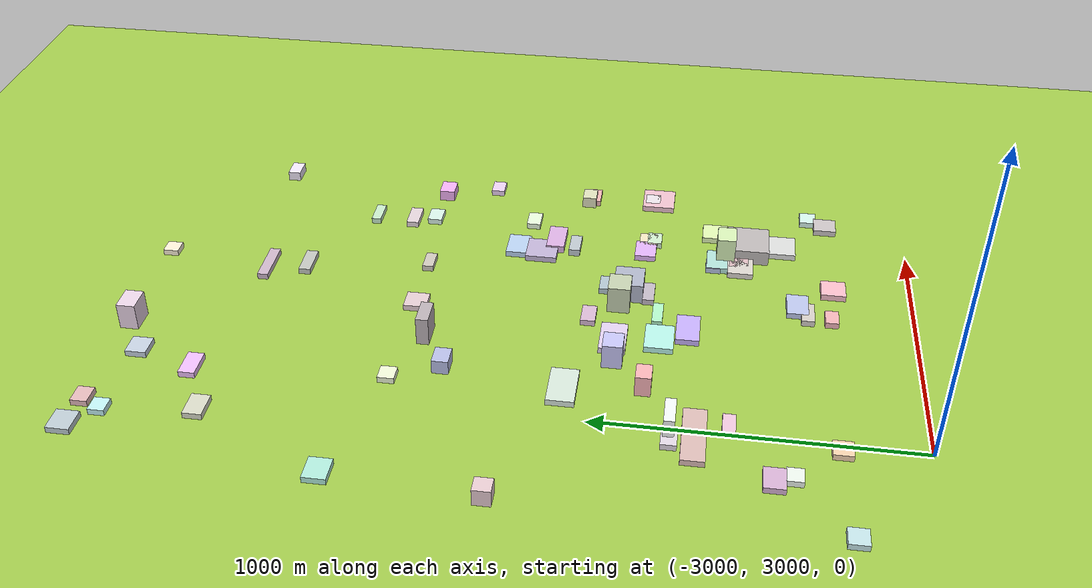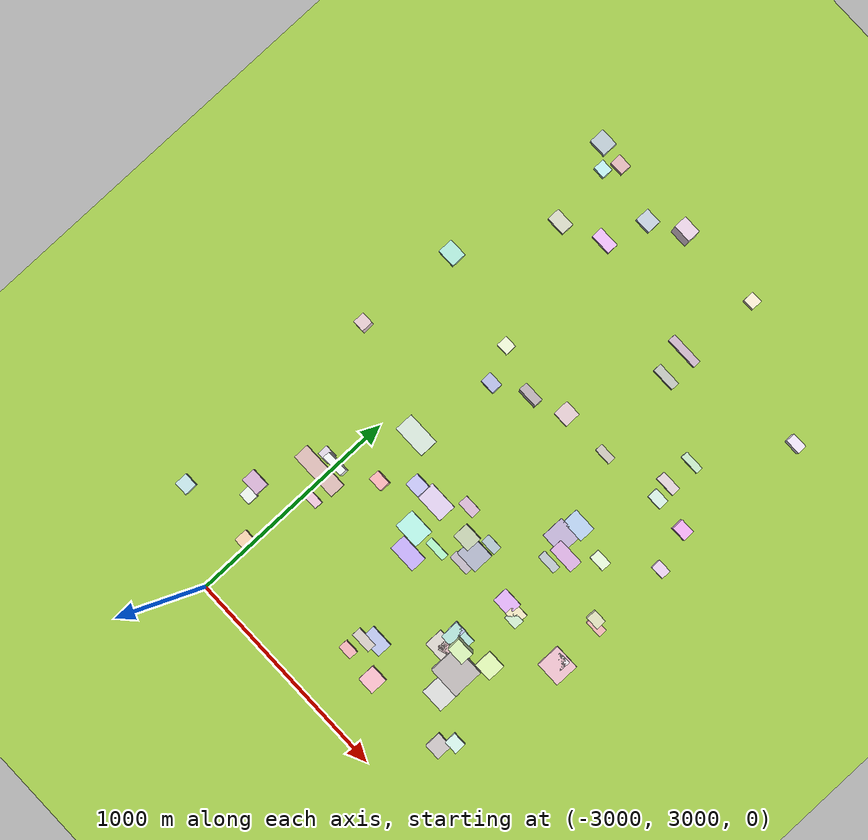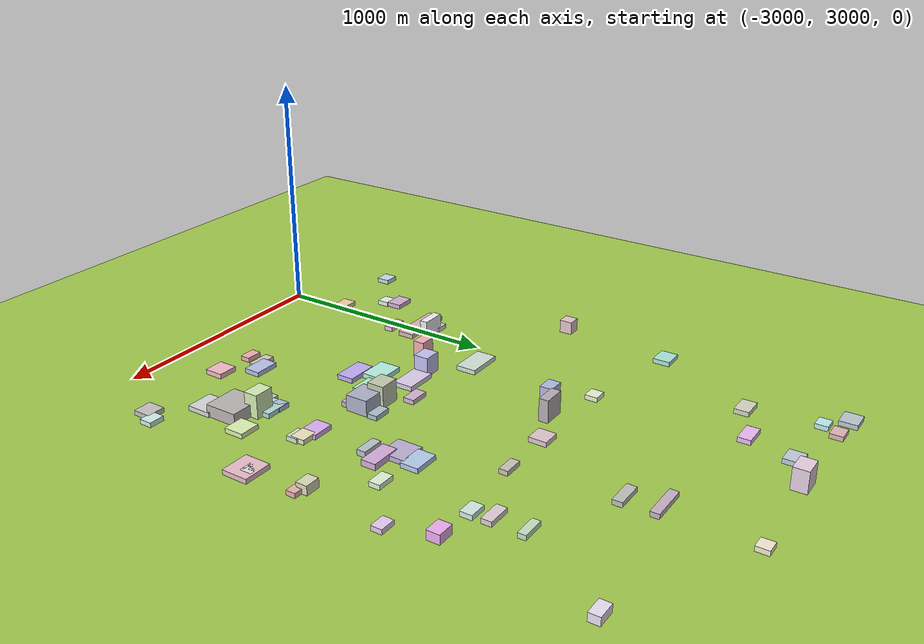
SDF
<sdf version="1.9">
 <world name="city_map">
  <model name="ground_plane">
   <static>1</static>
   <link name="link">
    <collision name="collision">
     <geometry><plane><normal>0 0 1</normal><size>11000 11000</size></plane></geometry>
    </collision>
    <visual name="visual">
     <geometry><plane><normal>0 0 1</normal><size>11000 11000</size></plane></geometry>
     <material>
      <ambient>0.551 0.712 0.210 1</ambient>
      <diffuse>0.651 0.812 0.310 1</diffuse>
      <specular>0.1 0.1 0.05 1</specular>
     </material>
    </visual>
   </link>
  </model>
  <model name="building_779046447">
   <static>1</static>
   <pose>-2026.9152677014158 3538.6379115861178 25.387741778258516 0 0 0</pose>
   <link name="link">
    <collision name="collision">
     <geometry><box><size>148.3548526547793 141.791400000713 50.77548355651703</size></box></geometry>
    </collision>
    <visual name="visual">
     <cast_shadows>false</cast_shadows>
     <geometry><box><size>148.3548526547793 141.791400000713 50.77548355651703</size></box></geometry>
     <material>
      <ambient>0.656 0.634 0.631 1</ambient>
      <diffuse>0.756 0.734 0.731 1</diffuse>
      <specular>0.227 0.220 0.219 1</specular>
      <emissive>0.01 0.01 0.01 1</emissive>
     </material>
    </visual>
   </link>
  </model>
  <model name="building_150204473">
   <static>1</static>
   <pose>-3030.4117601710113 3682.9831837163233 10.0 0 0 0</pose>
   <link name="link">
    <collision name="collision">
     <geometry><box><size>228.55793976692738 72.08340000003943 20</size></box></geometry>
    </collision>
    <visual name="visual">
     <cast_shadows>false</cast_shadows>
     <geometry><box><size>228.55793976692738 72.08340000003943 20</size></box></geometry>
     <material>
      <ambient>0.775 0.646 0.629 1</ambient>
      <diffuse>0.875 0.746 0.729 1</diffuse>
      <specular>0.262 0.224 0.219 1</specular>
      <emissive>0.01 0.01 0.01 1</emissive>
     </material>
    </visual>
   </link>
  </model>
  <model name="building_478297262">
   <static>1</static>
   <pose>-2862.899613398706 4084.154073277386 10.0 0 0 0</pose>
   <link name="link">
    <collision name="collision">
     <geometry><box><size>156.67649999956978 87.36580911283264 20</size></box></geometry>
    </collision>
    <visual name="visual">
     <cast_shadows>false</cast_shadows>
     <geometry><box><size>156.67649999956978 87.36580911283264 20</size></box></geometry>
     <material>
      <ambient>0.756 0.818 0.769 1</ambient>
      <diffuse>0.856 0.918 0.869 1</diffuse>
      <specular>0.257 0.275 0.261 1</specular>
      <emissive>0.01 0.01 0.01 1</emissive>
     </material>
    </visual>
   </link>
  </model>
  <model name="building_380307420">
   <static>1</static>
   <pose>-1752.7643381100052 3860.7223820486083 10.0 0 0 0</pose>
   <link name="link">
    <collision name="collision">
     <geometry><box><size>117.21600000061017 111.87568469347427 20</size></box></geometry>
    </collision>
    <visual name="visual">
     <cast_shadows>false</cast_shadows>
     <geometry><box><size>117.21600000061017 111.87568469347427 20</size></box></geometry>
     <material>
      <ambient>0.845 0.671 0.720 1</ambient>
      <diffuse>0.945 0.771 0.820 1</diffuse>
      <specular>0.283 0.231 0.246 1</specular>
      <emissive>0.01 0.01 0.01 1</emissive>
     </material>
    </visual>
   </link>
  </model>
  <model name="building_392779043">
   <static>1</static>
   <pose>-2136.278882338136 4241.318621260017 10.0 0 0 0</pose>
   <link name="link">
    <collision name="collision">
     <geometry><box><size>110.59141217906419 106.1270999995827 20</size></box></geometry>
    </collision>
    <visual name="visual">
     <cast_shadows>false</cast_shadows>
     <geometry><box><size>110.59141217906419 106.1270999995827 20</size></box></geometry>
     <material>
      <ambient>0.671 0.614 0.752 1</ambient>
      <diffuse>0.771 0.714 0.852 1</diffuse>
      <specular>0.231 0.214 0.255 1</specular>
      <emissive>0.01 0.01 0.01 1</emissive>
     </material>
    </visual>
   </link>
  </model>
  <model name="building_971668367">
   <static>1</static>
   <pose>-2001.9956698989567 3428.0472966630837 10.0 0 0 0</pose>
   <link name="link">
    <collision name="collision">
     <geometry><box><size>110.77166580650461 105.17249999946898 20</size></box></geometry>
    </collision>
    <visual name="visual">
     <cast_shadows>false</cast_shadows>
     <geometry><box><size>110.77166580650461 105.17249999946898 20</size></box></geometry>
     <material>
      <ambient>0.776 0.780 0.776 1</ambient>
      <diffuse>0.876 0.880 0.876 1</diffuse>
      <specular>0.263 0.264 0.263 1</specular>
      <emissive>0.01 0.01 0.01 1</emissive>
     </material>
    </visual>
   </link>
  </model>
  <model name="building_135621178">
   <static>1</static>
   <pose>-2599.8306661308898 3954.241252090909 10.0 0 0 0</pose>
   <link name="link">
    <collision name="collision">
     <geometry><box><size>136.58549999981773 84.72314462581443 20</size></box></geometry>
    </collision>
    <visual name="visual">
     <cast_shadows>false</cast_shadows>
     <geometry><box><size>136.58549999981773 84.72314462581443 20</size></box></geometry>
     <material>
      <ambient>0.796 0.734 0.853 1</ambient>
      <diffuse>0.896 0.834 0.953 1</diffuse>
      <specular>0.269 0.250 0.286 1</specular>
      <emissive>0.01 0.01 0.01 1</emissive>
     </material>
    </visual>
   </link>
  </model>
  <model name="building_324495867">
   <static>1</static>
   <pose>-2581.441349432813 3809.756171664887 10.0 0 0 0</pose>
   <link name="link">
    <collision name="collision">
     <geometry><box><size>122.92140000024432 92.83815516271062 20</size></box></geometry>
    </collision>
    <visual name="visual">
     <cast_shadows>false</cast_shadows>
     <geometry><box><size>122.92140000024432 92.83815516271062 20</size></box></geometry>
     <material>
      <ambient>0.634 0.870 0.823 1</ambient>
      <diffuse>0.734 0.970 0.923 1</diffuse>
      <specular>0.220 0.291 0.277 1</specular>
      <emissive>0.01 0.01 0.01 1</emissive>
     </material>
    </visual>
   </link>
  </model>
  <model name="building_620089919">
   <static>1</static>
   <pose>-2330.4941967478435 3925.686909934977 33.479055689272975 0 0 0</pose>
   <link name="link">
    <collision name="collision">
     <geometry><box><size>107.65599586581368 96.6810000004017 66.95811137854595</size></box></geometry>
    </collision>
    <visual name="visual">
     <cast_shadows>false</cast_shadows>
     <geometry><box><size>107.65599586581368 96.6810000004017 66.95811137854595</size></box></geometry>
     <material>
      <ambient>0.603 0.622 0.703 1</ambient>
      <diffuse>0.703 0.722 0.803 1</diffuse>
      <specular>0.211 0.217 0.241 1</specular>
      <emissive>0.01 0.01 0.01 1</emissive>
     </material>
    </visual>
   </link>
  </model>
  <model name="building_108341620">
   <static>1</static>
   <pose>-2522.181373092789 3722.1247817815984 10.0 0 0 0</pose>
   <link name="link">
    <collision name="collision">
     <geometry><box><size>132.46326954958732 75.45780000003788 20</size></box></geometry>
    </collision>
    <visual name="visual">
     <cast_shadows>false</cast_shadows>
     <geometry><box><size>132.46326954958732 75.45780000003788 20</size></box></geometry>
     <material>
      <ambient>0.686 0.601 0.891 1</ambient>
      <diffuse>0.786 0.701 0.991 1</diffuse>
      <specular>0.236 0.210 0.297 1</specular>
      <emissive>0.01 0.01 0.01 1</emissive>
     </material>
    </visual>
   </link>
  </model>
  <model name="building_486472831">
   <static>1</static>
   <pose>-2118.5942548875673 3631.996280058344 10.0 0 0 0</pose>
   <link name="link">
    <collision name="collision">
     <geometry><box><size>107.2925999997949 87.82700623794858 20</size></box></geometry>
    </collision>
    <visual name="visual">
     <cast_shadows>false</cast_shadows>
     <geometry><box><size>107.2925999997949 87.82700623794858 20</size></box></geometry>
     <material>
      <ambient>0.612 0.797 0.759 1</ambient>
      <diffuse>0.712 0.897 0.859 1</diffuse>
      <specular>0.214 0.269 0.258 1</specular>
      <emissive>0.01 0.01 0.01 1</emissive>
     </material>
    </visual>
   </link>
  </model>
  <model name="building_393066325">
   <static>1</static>
   <pose>-2142.4051739296788 3561.7006494060956 10.0 0 0 0</pose>
   <link name="link">
    <collision name="collision">
     <geometry><box><size>103.68510000022724 85.33088093141914 20</size></box></geometry>
    </collision>
    <visual name="visual">
     <cast_shadows>false</cast_shadows>
     <geometry><box><size>103.68510000022724 85.33088093141914 20</size></box></geometry>
     <material>
      <ambient>0.770 0.747 0.719 1</ambient>
      <diffuse>0.870 0.847 0.819 1</diffuse>
      <specular>0.261 0.254 0.246 1</specular>
      <emissive>0.01 0.01 0.01 1</emissive>
     </material>
    </visual>
   </link>
  </model>
  <model name="building_122891912">
   <static>1</static>
   <pose>-2120.6230412270857 4325.860179724155 10.0 0 0 0</pose>
   <link name="link">
    <collision name="collision">
     <geometry><box><size>109.07087139975691 76.0571999999442 20</size></box></geometry>
    </collision>
    <visual name="visual">
     <cast_shadows>false</cast_shadows>
     <geometry><box><size>109.07087139975691 76.0571999999442 20</size></box></geometry>
     <material>
      <ambient>0.635 0.734 0.855 1</ambient>
      <diffuse>0.735 0.834 0.955 1</diffuse>
      <specular>0.221 0.250 0.287 1</specular>
      <emissive>0.01 0.01 0.01 1</emissive>
     </material>
    </visual>
   </link>
  </model>
  <model name="building_673491360">
   <static>1</static>
   <pose>-2064.002116884433 4198.76990049326 12.752662557428005 0 0 0</pose>
   <link name="link">
    <collision name="collision">
     <geometry><box><size>124.97314102511375 61.86030000045406 25.50532511485601</size></box></geometry>
    </collision>
    <visual name="visual">
     <cast_shadows>false</cast_shadows>
     <geometry><box><size>124.97314102511375 61.86030000045406 25.50532511485601</size></box></geometry>
     <material>
      <ambient>0.770 0.602 0.798 1</ambient>
      <diffuse>0.870 0.702 0.898 1</diffuse>
      <specular>0.261 0.210 0.269 1</specular>
      <emissive>0.01 0.01 0.01 1</emissive>
     </material>
    </visual>
   </link>
  </model>
  <model name="building_292705911">
   <static>1</static>
   <pose>-2343.5402242066593 3374.0567934141527 10.0 0 0 0</pose>
   <link name="link">
    <collision name="collision">
     <geometry><box><size>106.5599999999094 70.11416739337199 20</size></box></geometry>
    </collision>
    <visual name="visual">
     <cast_shadows>false</cast_shadows>
     <geometry><box><size>106.5599999999094 70.11416739337199 20</size></box></geometry>
     <material>
      <ambient>0.651 0.689 0.838 1</ambient>
      <diffuse>0.751 0.789 0.938 1</diffuse>
      <specular>0.225 0.237 0.282 1</specular>
      <emissive>0.01 0.01 0.01 1</emissive>
     </material>
    </visual>
   </link>
  </model>
  <model name="building_777039203">
   <static>1</static>
   <pose>-1945.632540679411 3652.648817041547 10.0 0 0 0</pose>
   <link name="link">
    <collision name="collision">
     <geometry><box><size>87.00984475664323 84.24899999945268 20</size></box></geometry>
    </collision>
    <visual name="visual">
     <cast_shadows>false</cast_shadows>
     <geometry><box><size>87.00984475664323 84.24899999945268 20</size></box></geometry>
     <material>
      <ambient>0.795 0.880 0.621 1</ambient>
      <diffuse>0.895 0.980 0.721 1</diffuse>
      <specular>0.269 0.294 0.216 1</specular>
      <emissive>0.01 0.01 0.01 1</emissive>
     </material>
    </visual>
   </link>
  </model>
  <model name="building_12397049">
   <static>1</static>
   <pose>-2236.6789880599126 3255.0809366933886 10.5 0 0 0</pose>
   <link name="link">
    <collision name="collision">
     <geometry><box><size>82.63627979517308 80.83020000051278 21.0</size></box></geometry>
    </collision>
    <visual name="visual">
     <cast_shadows>false</cast_shadows>
     <geometry><box><size>82.63627979517308 80.83020000051278 21.0</size></box></geometry>
     <material>
      <ambient>0.886 0.657 0.704 1</ambient>
      <diffuse>0.986 0.757 0.804 1</diffuse>
      <specular>0.296 0.227 0.241 1</specular>
      <emissive>0.01 0.01 0.01 1</emissive>
     </material>
    </visual>
   </link>
  </model>
  <model name="building_822719983">
   <static>1</static>
   <pose>-2089.1238907624984 3886.5406735434635 10.0 0 0 0</pose>
   <link name="link">
    <collision name="collision">
     <geometry><box><size>91.36512121021624 70.94010000008666 20</size></box></geometry>
    </collision>
    <visual name="visual">
     <cast_shadows>false</cast_shadows>
     <geometry><box><size>91.36512121021624 70.94010000008666 20</size></box></geometry>
     <material>
      <ambient>0.796 0.613 0.882 1</ambient>
      <diffuse>0.896 0.713 0.982 1</diffuse>
      <specular>0.269 0.214 0.295 1</specular>
      <emissive>0.01 0.01 0.01 1</emissive>
     </material>
    </visual>
   </link>
  </model>
  <model name="building_477587215">
   <static>1</static>
   <pose>-2403.898055534507 3952.172684746761 46.33368254999446 0 0 0</pose>
   <link name="link">
    <collision name="collision">
     <geometry><box><size>85.2812999996857 72.98729577149565 92.66736509998891</size></box></geometry>
    </collision>
    <visual name="visual">
     <cast_shadows>false</cast_shadows>
     <geometry><box><size>85.2812999996857 72.98729577149565 92.66736509998891</size></box></geometry>
     <material>
      <ambient>0.683 0.729 0.605 1</ambient>
      <diffuse>0.783 0.829 0.705 1</diffuse>
      <specular>0.235 0.249 0.212 1</specular>
      <emissive>0.01 0.01 0.01 1</emissive>
     </material>
    </visual>
   </link>
  </model>
  <model name="building_406325939">
   <static>1</static>
   <pose>-3326.721113274541 4719.2850389297355 10.0 0 0 0</pose>
   <link name="link">
    <collision name="collision">
     <geometry><box><size>86.45745297379614 71.71709999970233 20</size></box></geometry>
    </collision>
    <visual name="visual">
     <cast_shadows>false</cast_shadows>
     <geometry><box><size>86.45745297379614 71.71709999970233 20</size></box></geometry>
     <material>
      <ambient>0.605 0.835 0.773 1</ambient>
      <diffuse>0.705 0.935 0.873 1</diffuse>
      <specular>0.211 0.280 0.262 1</specular>
      <emissive>0.01 0.01 0.01 1</emissive>
     </material>
    </visual>
   </link>
  </model>
  <model name="building_826190428">
   <static>1</static>
   <pose>-3235.325301457299 5510.112623471208 10.0 0 0 0</pose>
   <link name="link">
    <collision name="collision">
     <geometry><box><size>83.30656520529091 72.60510000061515 20</size></box></geometry>
    </collision>
    <visual name="visual">
     <cast_shadows>false</cast_shadows>
     <geometry><box><size>83.30656520529091 72.60510000061515 20</size></box></geometry>
     <material>
      <ambient>0.656 0.712 0.741 1</ambient>
      <diffuse>0.756 0.812 0.841 1</diffuse>
      <specular>0.227 0.243 0.252 1</specular>
      <emissive>0.01 0.01 0.01 1</emissive>
     </material>
    </visual>
   </link>
  </model>
  <model name="building_866306420">
   <static>1</static>
   <pose>-1846.489587349168 3269.9727477945835 10.0 0 0 0</pose>
   <link name="link">
    <collision name="collision">
     <geometry><box><size>76.3048524655202 76.17929999979367 20</size></box></geometry>
    </collision>
    <visual name="visual">
     <cast_shadows>false</cast_shadows>
     <geometry><box><size>76.3048524655202 76.17929999979367 20</size></box></geometry>
     <material>
      <ambient>0.706 0.680 0.681 1</ambient>
      <diffuse>0.806 0.780 0.781 1</diffuse>
      <specular>0.242 0.234 0.234 1</specular>
      <emissive>0.01 0.01 0.01 1</emissive>
     </material>
    </visual>
   </link>
  </model>
  <model name="building_369052103">
   <static>1</static>
   <pose>-2498.16312897938 4609.605699137748 10.0 0 0 0</pose>
   <link name="link">
    <collision name="collision">
     <geometry><box><size>76.29030000030212 74.90745835428157 20</size></box></geometry>
    </collision>
    <visual name="visual">
     <cast_shadows>false</cast_shadows>
     <geometry><box><size>76.29030000030212 74.90745835428157 20</size></box></geometry>
     <material>
      <ambient>0.808 0.714 0.736 1</ambient>
      <diffuse>0.908 0.814 0.836 1</diffuse>
      <specular>0.272 0.244 0.251 1</specular>
      <emissive>0.01 0.01 0.01 1</emissive>
     </material>
    </visual>
   </link>
  </model>
  <model name="building_89113822">
   <static>1</static>
   <pose>-3179.538358654209 3453.415307226679 10.0 0 0 0</pose>
   <link name="link">
    <collision name="collision">
     <geometry><box><size>86.72306171552022 65.51220000054059 20</size></box></geometry>
    </collision>
    <visual name="visual">
     <cast_shadows>false</cast_shadows>
     <geometry><box><size>86.72306171552022 65.51220000054059 20</size></box></geometry>
     <material>
      <ambient>0.756 0.612 0.747 1</ambient>
      <diffuse>0.856 0.712 0.847 1</diffuse>
      <specular>0.257 0.214 0.254 1</specular>
      <emissive>0.01 0.01 0.01 1</emissive>
     </material>
    </visual>
   </link>
  </model>
  <model name="building_62638765">
   <static>1</static>
   <pose>-2354.536334573384 5154.22062805108 10.0 0 0 0</pose>
   <link name="link">
    <collision name="collision">
     <geometry><box><size>155.62199999986603 35.75937294750828 20</size></box></geometry>
    </collision>
    <visual name="visual">
     <cast_shadows>false</cast_shadows>
     <geometry><box><size>155.62199999986603 35.75937294750828 20</size></box></geometry>
     <material>
      <ambient>0.715 0.625 0.701 1</ambient>
      <diffuse>0.815 0.725 0.801 1</diffuse>
      <specular>0.245 0.218 0.240 1</specular>
      <emissive>0.01 0.01 0.01 1</emissive>
     </material>
    </visual>
   </link>
  </model>
  <model name="building_306217925">
   <static>1</static>
   <pose>-3112.0318498452134 5146.118635666398 10.0 0 0 0</pose>
   <link name="link">
    <collision name="collision">
     <geometry><box><size>90.14746299249744 59.873400000107324 20</size></box></geometry>
    </collision>
    <visual name="visual">
     <cast_shadows>false</cast_shadows>
     <geometry><box><size>90.14746299249744 59.873400000107324 20</size></box></geometry>
     <material>
      <ambient>0.761 0.766 0.691 1</ambient>
      <diffuse>0.861 0.866 0.791 1</diffuse>
      <specular>0.258 0.260 0.237 1</specular>
      <emissive>0.01 0.01 0.01 1</emissive>
     </material>
    </visual>
   </link>
  </model>
  <model name="building_240554039">
   <static>1</static>
   <pose>-2110.989937535722 3567.620793742271 10.0 0 0 0</pose>
   <link name="link">
    <collision name="collision">
     <geometry><box><size>82.97250000030942 63.30124215476487 20</size></box></geometry>
    </collision>
    <visual name="visual">
     <cast_shadows>false</cast_shadows>
     <geometry><box><size>82.97250000030942 63.30124215476487 20</size></box></geometry>
     <material>
      <ambient>0.785 0.652 0.670 1</ambient>
      <diffuse>0.885 0.752 0.770 1</diffuse>
      <specular>0.266 0.226 0.231 1</specular>
      <emissive>0.01 0.01 0.01 1</emissive>
     </material>
    </visual>
   </link>
  </model>
  <model name="building_547305645">
   <static>1</static>
   <pose>-2079.9422357919543 3613.9036861521495 49.95096524472886 0 0 0</pose>
   <link name="link">
    <collision name="collision">
     <geometry><box><size>83.50530000022616 62.018041783486844 99.90193048945773</size></box></geometry>
    </collision>
    <visual name="visual">
     <cast_shadows>false</cast_shadows>
     <geometry><box><size>83.50530000022616 62.018041783486844 99.90193048945773</size></box></geometry>
     <material>
      <ambient>0.760 0.862 0.632 1</ambient>
      <diffuse>0.860 0.962 0.732 1</diffuse>
      <specular>0.258 0.288 0.220 1</specular>
      <emissive>0.01 0.01 0.01 1</emissive>
     </material>
    </visual>
   </link>
  </model>
  <model name="building_283470803">
   <static>1</static>
   <pose>-2720.3133646830324 5495.023471925398 44.50950646618637 0 0 0</pose>
   <link name="link">
    <collision name="collision">
     <geometry><box><size>84.92602306646249 60.85020000048047 89.01901293237275</size></box></geometry>
    </collision>
    <visual name="visual">
     <cast_shadows>false</cast_shadows>
     <geometry><box><size>84.92602306646249 60.85020000048047 89.01901293237275</size></box></geometry>
     <material>
      <ambient>0.835 0.749 0.821 1</ambient>
      <diffuse>0.935 0.849 0.921 1</diffuse>
      <specular>0.280 0.255 0.276 1</specular>
      <emissive>0.01 0.01 0.01 1</emissive>
     </material>
    </visual>
   </link>
  </model>
  <model name="building_914606425">
   <static>1</static>
   <pose>-2925.2693358213096 5228.408656723748 10.0 0 0 0</pose>
   <link name="link">
    <collision name="collision">
     <geometry><box><size>98.87647919688611 52.25880000024574 20</size></box></geometry>
    </collision>
    <visual name="visual">
     <cast_shadows>false</cast_shadows>
     <geometry><box><size>98.87647919688611 52.25880000024574 20</size></box></geometry>
     <material>
      <ambient>0.852 0.662 0.895 1</ambient>
      <diffuse>0.952 0.762 0.995 1</diffuse>
      <specular>0.286 0.229 0.298 1</specular>
      <emissive>0.01 0.01 0.01 1</emissive>
     </material>
    </visual>
   </link>
  </model>
  <model name="building_379418924">
   <static>1</static>
   <pose>-2862.055501805536 5420.263098544132 10.0 0 0 0</pose>
   <link name="link">
    <collision name="collision">
     <geometry><box><size>75.99059999995461 66.74511617706997 20</size></box></geometry>
    </collision>
    <visual name="visual">
     <cast_shadows>false</cast_shadows>
     <geometry><box><size>75.99059999995461 66.74511617706997 20</size></box></geometry>
     <material>
      <ambient>0.687 0.732 0.791 1</ambient>
      <diffuse>0.787 0.832 0.891 1</diffuse>
      <specular>0.236 0.249 0.267 1</specular>
      <emissive>0.01 0.01 0.01 1</emissive>
     </material>
    </visual>
   </link>
  </model>
  <model name="building_661566401">
   <static>1</static>
   <pose>-2701.769550457938 3947.6402640080555 41.42110949966762 0 0 0</pose>
   <link name="link">
    <collision name="collision">
     <geometry><box><size>73.91866429672113 63.93600000026112 82.84221899933524</size></box></geometry>
    </collision>
    <visual name="visual">
     <cast_shadows>false</cast_shadows>
     <geometry><box><size>73.91866429672113 63.93600000026112 82.84221899933524</size></box></geometry>
     <material>
      <ambient>0.692 0.689 0.879 1</ambient>
      <diffuse>0.792 0.789 0.979 1</diffuse>
      <specular>0.238 0.237 0.294 1</specular>
      <emissive>0.01 0.01 0.01 1</emissive>
     </material>
    </visual>
   </link>
  </model>
  <model name="building_760148200">
   <static>1</static>
   <pose>-2326.3661436589236 5023.082087953343 10.0 0 0 0</pose>
   <link name="link">
    <collision name="collision">
     <geometry><box><size>112.16549999995351 39.63341696680181 20</size></box></geometry>
    </collision>
    <visual name="visual">
     <cast_shadows>false</cast_shadows>
     <geometry><box><size>112.16549999995351 39.63341696680181 20</size></box></geometry>
     <material>
      <ambient>0.673 0.685 0.658 1</ambient>
      <diffuse>0.773 0.785 0.758 1</diffuse>
      <specular>0.232 0.235 0.228 1</specular>
      <emissive>0.01 0.01 0.01 1</emissive>
     </material>
    </visual>
   </link>
  </model>
  <model name="building_190232583">
   <static>1</static>
   <pose>-2382.7826032722064 3341.4720387265606 10.0 0 0 0</pose>
   <link name="link">
    <collision name="collision">
     <geometry><box><size>97.85759999995491 42.56270177600959 20</size></box></geometry>
    </collision>
    <visual name="visual">
     <cast_shadows>false</cast_shadows>
     <geometry><box><size>97.85759999995491 42.56270177600959 20</size></box></geometry>
     <material>
      <ambient>0.747 0.717 0.693 1</ambient>
      <diffuse>0.847 0.817 0.793 1</diffuse>
      <specular>0.254 0.245 0.238 1</specular>
      <emissive>0.01 0.01 0.01 1</emissive>
     </material>
    </visual>
   </link>
  </model>
  <model name="building_848098060">
   <static>1</static>
   <pose>-2026.5509544114334 3880.3636160217716 10.0 0 0 0</pose>
   <link name="link">
    <collision name="collision">
     <geometry><box><size>67.65688134486291 61.30529999948919 20</size></box></geometry>
    </collision>
    <visual name="visual">
     <cast_shadows>false</cast_shadows>
     <geometry><box><size>67.65688134486291 61.30529999948919 20</size></box></geometry>
     <material>
      <ambient>0.863 0.821 0.679 1</ambient>
      <diffuse>0.963 0.921 0.779 1</diffuse>
      <specular>0.289 0.276 0.234 1</specular>
      <emissive>0.01 0.01 0.01 1</emissive>
     </material>
    </visual>
   </link>
  </model>
  <model name="building_990459798">
   <static>1</static>
   <pose>-1991.8910349288458 4721.869554112743 10.0 0 0 0</pose>
   <link name="link">
    <collision name="collision">
     <geometry><box><size>96.05290140845021 42.424200000468204 20</size></box></geometry>
    </collision>
    <visual name="visual">
     <cast_shadows>false</cast_shadows>
     <geometry><box><size>96.05290140845021 42.424200000468204 20</size></box></geometry>
     <material>
      <ambient>0.802 0.743 0.767 1</ambient>
      <diffuse>0.902 0.843 0.867 1</diffuse>
      <specular>0.270 0.253 0.260 1</specular>
      <emissive>0.01 0.01 0.01 1</emissive>
     </material>
    </visual>
   </link>
  </model>
  <model name="building_850380925">
   <static>1</static>
   <pose>-2490.088823091275 4043.2469720135514 10.0 0 0 0</pose>
   <link name="link">
    <collision name="collision">
     <geometry><box><size>83.15612027422674 47.19719999945937 20</size></box></geometry>
    </collision>
    <visual name="visual">
     <cast_shadows>false</cast_shadows>
     <geometry><box><size>83.15612027422674 47.19719999945937 20</size></box></geometry>
     <material>
      <ambient>0.762 0.635 0.744 1</ambient>
      <diffuse>0.862 0.735 0.844 1</diffuse>
      <specular>0.258 0.220 0.253 1</specular>
      <emissive>0.01 0.01 0.01 1</emissive>
     </material>
    </visual>
   </link>
  </model>
  <model name="building_465957009">
   <static>1</static>
   <pose>-3027.2395660757743 3259.029289694733 10.0 0 0 0</pose>
   <link name="link">
    <collision name="collision">
     <geometry><box><size>63.84719999922339 61.13855065784215 20</size></box></geometry>
    </collision>
    <visual name="visual">
     <cast_shadows>false</cast_shadows>
     <geometry><box><size>63.84719999922339 61.13855065784215 20</size></box></geometry>
     <material>
      <ambient>0.875 0.743 0.603 1</ambient>
      <diffuse>0.975 0.843 0.703 1</diffuse>
      <specular>0.292 0.253 0.211 1</specular>
      <emissive>0.01 0.01 0.01 1</emissive>
     </material>
    </visual>
   </link>
  </model>
  <model name="building_325204102">
   <static>1</static>
   <pose>-3371.328636491428 3235.3880176761945 10.0 0 0 0</pose>
   <link name="link">
    <collision name="collision">
     <geometry><box><size>64.3578000004581 60.16687105212503 20</size></box></geometry>
    </collision>
    <visual name="visual">
     <cast_shadows>false</cast_shadows>
     <geometry><box><size>64.3578000004581 60.16687105212503 20</size></box></geometry>
     <material>
      <ambient>0.682 0.808 0.824 1</ambient>
      <diffuse>0.782 0.908 0.924 1</diffuse>
      <specular>0.235 0.272 0.277 1</specular>
      <emissive>0.01 0.01 0.01 1</emissive>
     </material>
    </visual>
   </link>
  </model>
  <model name="building_757576882">
   <static>1</static>
   <pose>-2657.9091792180634 4547.581910353881 47.69120217952196 0 0 0</pose>
   <link name="link">
    <collision name="collision">
     <geometry><box><size>95.38154597144522 40.326300000401716 95.38240435904392</size></box></geometry>
    </collision>
    <visual name="visual">
     <cast_shadows>false</cast_shadows>
     <geometry><box><size>95.38154597144522 40.326300000401716 95.38240435904392</size></box></geometry>
     <material>
      <ambient>0.648 0.606 0.628 1</ambient>
      <diffuse>0.748 0.706 0.728 1</diffuse>
      <specular>0.224 0.212 0.218 1</specular>
      <emissive>0.01 0.01 0.01 1</emissive>
     </material>
    </visual>
   </link>
  </model>
  <model name="building_829861702">
   <static>1</static>
   <pose>-2341.367296301182 3859.1836889996366 10.0 0 0 0</pose>
   <link name="link">
    <collision name="collision">
     <geometry><box><size>98.41168070920516 38.29500000032482 20</size></box></geometry>
    </collision>
    <visual name="visual">
     <cast_shadows>false</cast_shadows>
     <geometry><box><size>98.41168070920516 38.29500000032482 20</size></box></geometry>
     <material>
      <ambient>0.675 0.638 0.686 1</ambient>
      <diffuse>0.775 0.738 0.786 1</diffuse>
      <specular>0.233 0.221 0.236 1</specular>
      <emissive>0.01 0.01 0.01 1</emissive>
     </material>
    </visual>
   </link>
  </model>
  <model name="building_475289768">
   <static>1</static>
   <pose>-1810.4622918633133 4632.345574844465 19.033303909439347 0 0 0</pose>
   <link name="link">
    <collision name="collision">
     <geometry><box><size>69.55259999964625 53.58397430417142 38.066607818878694</size></box></geometry>
    </collision>
    <visual name="visual">
     <cast_shadows>false</cast_shadows>
     <geometry><box><size>69.55259999964625 53.58397430417142 38.066607818878694</size></box></geometry>
     <material>
      <ambient>0.864 0.605 0.871 1</ambient>
      <diffuse>0.964 0.705 0.971 1</diffuse>
      <specular>0.289 0.211 0.291 1</specular>
      <emissive>0.01 0.01 0.01 1</emissive>
     </material>
    </visual>
   </link>
  </model>
  <model name="building_753800101">
   <static>1</static>
   <pose>-2807.984337976301 4465.141512075635 23.642349329613978 0 0 0</pose>
   <link name="link">
    <collision name="collision">
     <geometry><box><size>70.50976039541628 52.835999999892636 47.284698659227956</size></box></geometry>
    </collision>
    <visual name="visual">
     <cast_shadows>false</cast_shadows>
     <geometry><box><size>70.50976039541628 52.835999999892636 47.284698659227956</size></box></geometry>
     <material>
      <ambient>0.631 0.657 0.816 1</ambient>
      <diffuse>0.731 0.757 0.916 1</diffuse>
      <specular>0.219 0.227 0.275 1</specular>
      <emissive>0.01 0.01 0.01 1</emissive>
     </material>
    </visual>
   </link>
  </model>
  <model name="building_109922525">
   <static>1</static>
   <pose>-1951.4080708135689 4292.94504867234 10.0 0 0 0</pose>
   <link name="link">
    <collision name="collision">
     <geometry><box><size>75.52632332114788 47.88539999961472 20</size></box></geometry>
    </collision>
    <visual name="visual">
     <cast_shadows>false</cast_shadows>
     <geometry><box><size>75.52632332114788 47.88539999961472 20</size></box></geometry>
     <material>
      <ambient>0.820 0.890 0.777 1</ambient>
      <diffuse>0.920 0.990 0.877 1</diffuse>
      <specular>0.276 0.297 0.263 1</specular>
      <emissive>0.01 0.01 0.01 1</emissive>
     </material>
    </visual>
   </link>
  </model>
  <model name="building_272306794">
   <static>1</static>
   <pose>-1974.9611565258551 4646.7150356092525 10.0 0 0 0</pose>
   <link name="link">
    <collision name="collision">
     <geometry><box><size>71.41740000014352 49.56897833761791 20</size></box></geometry>
    </collision>
    <visual name="visual">
     <cast_shadows>false</cast_shadows>
     <geometry><box><size>71.41740000014352 49.56897833761791 20</size></box></geometry>
     <material>
      <ambient>0.762 0.860 0.818 1</ambient>
      <diffuse>0.862 0.960 0.918 1</diffuse>
      <specular>0.259 0.288 0.275 1</specular>
      <emissive>0.01 0.01 0.01 1</emissive>
     </material>
    </visual>
   </link>
  </model>
  <model name="building_729177105">
   <static>1</static>
   <pose>-1807.3855371175775 3328.192646386473 10.0 0 0 0</pose>
   <link name="link">
    <collision name="collision">
     <geometry><box><size>64.20187818768204 55.056000000597294 20</size></box></geometry>
    </collision>
    <visual name="visual">
     <cast_shadows>false</cast_shadows>
     <geometry><box><size>64.20187818768204 55.056000000597294 20</size></box></geometry>
     <material>
      <ambient>0.752 0.872 0.836 1</ambient>
      <diffuse>0.852 0.972 0.936 1</diffuse>
      <specular>0.256 0.292 0.281 1</specular>
      <emissive>0.01 0.01 0.01 1</emissive>
     </material>
    </visual>
   </link>
  </model>
  <model name="building_853670054">
   <static>1</static>
   <pose>-3116.338874611233 5499.373523354742 10.0 0 0 0</pose>
   <link name="link">
    <collision name="collision">
     <geometry><box><size>66.73711689797122 52.591799999405 20</size></box></geometry>
    </collision>
    <visual name="visual">
     <cast_shadows>false</cast_shadows>
     <geometry><box><size>66.73711689797122 52.591799999405 20</size></box></geometry>
     <material>
      <ambient>0.805 0.636 0.647 1</ambient>
      <diffuse>0.905 0.736 0.747 1</diffuse>
      <specular>0.272 0.221 0.224 1</specular>
      <emissive>0.01 0.01 0.01 1</emissive>
     </material>
    </visual>
   </link>
  </model>
  <model name="building_971516880">
   <static>1</static>
   <pose>-2093.0022201787137 4130.496385731909 12.0 0 0 0</pose>
   <link name="link">
    <collision name="collision">
     <geometry><box><size>91.62390305622347 37.884300000257554 24.0</size></box></geometry>
    </collision>
    <visual name="visual">
     <cast_shadows>false</cast_shadows>
     <geometry><box><size>91.62390305622347 37.884300000257554 24.0</size></box></geometry>
     <material>
      <ambient>0.655 0.692 0.719 1</ambient>
      <diffuse>0.755 0.792 0.819 1</diffuse>
      <specular>0.227 0.238 0.246 1</specular>
      <emissive>0.01 0.01 0.01 1</emissive>
     </material>
    </visual>
   </link>
  </model>
  <model name="building_928662078">
   <static>1</static>
   <pose>-3001.583364465952 3756.65489059304 39.73455282750528 0 0 0</pose>
   <link name="link">
    <collision name="collision">
     <geometry><box><size>102.97612976517831 33.54420000001568 79.46910565501057</size></box></geometry>
    </collision>
    <visual name="visual">
     <cast_shadows>false</cast_shadows>
     <geometry><box><size>102.97612976517831 33.54420000001568 79.46910565501057</size></box></geometry>
     <material>
      <ambient>0.866 0.882 0.881 1</ambient>
      <diffuse>0.966 0.982 0.981 1</diffuse>
      <specular>0.290 0.295 0.294 1</specular>
      <emissive>0.01 0.01 0.01 1</emissive>
     </material>
    </visual>
   </link>
  </model>
  <model name="building_151589386">
   <static>1</static>
   <pose>-2453.5734144537746 3823.0205717001145 10.0 0 0 0</pose>
   <link name="link">
    <collision name="collision">
     <geometry><box><size>101.14565580622684 33.94379999995323 20</size></box></geometry>
    </collision>
    <visual name="visual">
     <cast_shadows>false</cast_shadows>
     <geometry><box><size>101.14565580622684 33.94379999995323 20</size></box></geometry>
     <material>
      <ambient>0.608 0.878 0.699 1</ambient>
      <diffuse>0.708 0.978 0.799 1</diffuse>
      <specular>0.212 0.293 0.240 1</specular>
      <emissive>0.01 0.01 0.01 1</emissive>
     </material>
    </visual>
   </link>
  </model>
  <model name="building_340164416">
   <static>1</static>
   <pose>-2824.765738839265 3843.763032163633 34.67668120844806 0 0 0</pose>
   <link name="link">
    <collision name="collision">
     <geometry><box><size>67.96530000002576 49.48267777195192 69.35336241689612</size></box></geometry>
    </collision>
    <visual name="visual">
     <cast_shadows>false</cast_shadows>
     <geometry><box><size>67.96530000002576 49.48267777195192 69.35336241689612</size></box></geometry>
     <material>
      <ambient>0.885 0.617 0.632 1</ambient>
      <diffuse>0.985 0.717 0.732 1</diffuse>
      <specular>0.296 0.215 0.220 1</specular>
      <emissive>0.01 0.01 0.01 1</emissive>
     </material>
    </visual>
   </link>
  </model>
  <model name="building_383360640">
   <static>1</static>
   <pose>-2968.087374912127 3583.2701016127135 10.0 0 0 0</pose>
   <link name="link">
    <collision name="collision">
     <geometry><box><size>85.53292442555112 39.23850000030882 20</size></box></geometry>
    </collision>
    <visual name="visual">
     <cast_shadows>false</cast_shadows>
     <geometry><box><size>85.53292442555112 39.23850000030882 20</size></box></geometry>
     <material>
      <ambient>0.847 0.691 0.777 1</ambient>
      <diffuse>0.947 0.791 0.877 1</diffuse>
      <specular>0.284 0.237 0.263 1</specular>
      <emissive>0.01 0.01 0.01 1</emissive>
     </material>
    </visual>
   </link>
  </model>
  <model name="building_692265813">
   <static>1</static>
   <pose>-2311.3461338119882 4002.966291904347 10.0 0 0 0</pose>
   <link name="link">
    <collision name="collision">
     <geometry><box><size>75.53757274663931 42.41310000033849 20</size></box></geometry>
    </collision>
    <visual name="visual">
     <cast_shadows>false</cast_shadows>
     <geometry><box><size>75.53757274663931 42.41310000033849 20</size></box></geometry>
     <material>
      <ambient>0.608 0.685 0.722 1</ambient>
      <diffuse>0.708 0.785 0.822 1</diffuse>
      <specular>0.212 0.235 0.247 1</specular>
      <emissive>0.01 0.01 0.01 1</emissive>
     </material>
    </visual>
   </link>
  </model>
  <model name="building_352701818">
   <static>1</static>
   <pose>-1760.6932003017992 4092.176231261425 10.0 0 0 0</pose>
   <link name="link">
    <collision name="collision">
     <geometry><box><size>79.96996324820051 39.91560000033445 20</size></box></geometry>
    </collision>
    <visual name="visual">
     <cast_shadows>false</cast_shadows>
     <geometry><box><size>79.96996324820051 39.91560000033445 20</size></box></geometry>
     <material>
      <ambient>0.847 0.623 0.619 1</ambient>
      <diffuse>0.947 0.723 0.719 1</diffuse>
      <specular>0.284 0.217 0.216 1</specular>
      <emissive>0.01 0.01 0.01 1</emissive>
     </material>
    </visual>
   </link>
  </model>
  <model name="building_800842160">
   <static>1</static>
   <pose>-1750.7960761808847 5228.005164176963 16.408756269605156 0 0 0</pose>
   <link name="link">
    <collision name="collision">
     <geometry><box><size>72.01680000004984 43.72695124128519 32.81751253921031</size></box></geometry>
    </collision>
    <visual name="visual">
     <cast_shadows>false</cast_shadows>
     <geometry><box><size>72.01680000004984 43.72695124128519 32.81751253921031</size></box></geometry>
     <material>
      <ambient>0.854 0.818 0.889 1</ambient>
      <diffuse>0.954 0.918 0.989 1</diffuse>
      <specular>0.286 0.275 0.297 1</specular>
      <emissive>0.01 0.01 0.01 1</emissive>
     </material>
    </visual>
   </link>
  </model>
  <model name="building_898062257">
   <static>1</static>
   <pose>-2017.4224127282348 3859.121240133328 10.0 0 0 0</pose>
   <link name="link">
    <collision name="collision">
     <geometry><box><size>64.13417613143591 48.462600000050315 20</size></box></geometry>
    </collision>
    <visual name="visual">
     <cast_shadows>false</cast_shadows>
     <geometry><box><size>64.13417613143591 48.462600000050315 20</size></box></geometry>
     <material>
      <ambient>0.734 0.840 0.723 1</ambient>
      <diffuse>0.834 0.940 0.823 1</diffuse>
      <specular>0.250 0.282 0.247 1</specular>
      <emissive>0.01 0.01 0.01 1</emissive>
     </material>
    </visual>
   </link>
  </model>
  <model name="building_576077958">
   <static>1</static>
   <pose>-2882.377948897804 4620.3362996314345 10.0 0 0 0</pose>
   <link name="link">
    <collision name="collision">
     <geometry><box><size>58.13222736754423 52.84710000002235 20</size></box></geometry>
    </collision>
    <visual name="visual">
     <cast_shadows>false</cast_shadows>
     <geometry><box><size>58.13222736754423 52.84710000002235 20</size></box></geometry>
     <material>
      <ambient>0.852 0.885 0.760 1</ambient>
      <diffuse>0.952 0.985 0.860 1</diffuse>
      <specular>0.285 0.295 0.258 1</specular>
      <emissive>0.01 0.01 0.01 1</emissive>
     </material>
    </visual>
   </link>
  </model>
  <model name="building_576234902">
   <static>1</static>
   <pose>-3360.2035727197717 4243.758652116415 27.843510015200515 0 0 0</pose>
   <link name="link">
    <collision name="collision">
     <geometry><box><size>55.2079457594571 55.08930000019774 55.68702003040103</size></box></geometry>
    </collision>
    <visual name="visual">
     <cast_shadows>false</cast_shadows>
     <geometry><box><size>55.2079457594571 55.08930000019774 55.68702003040103</size></box></geometry>
     <material>
      <ambient>0.819 0.709 0.732 1</ambient>
      <diffuse>0.919 0.809 0.832 1</diffuse>
      <specular>0.276 0.243 0.250 1</specular>
      <emissive>0.01 0.01 0.01 1</emissive>
     </material>
    </visual>
   </link>
  </model>
  <model name="building_239894506">
   <static>1</static>
   <pose>-1989.4336797965832 4854.846800024799 10.0 0 0 0</pose>
   <link name="link">
    <collision name="collision">
     <geometry><box><size>93.28363160842073 32.42309999953363 20</size></box></geometry>
    </collision>
    <visual name="visual">
     <cast_shadows>false</cast_shadows>
     <geometry><box><size>93.28363160842073 32.42309999953363 20</size></box></geometry>
     <material>
      <ambient>0.695 0.829 0.704 1</ambient>
      <diffuse>0.795 0.929 0.804 1</diffuse>
      <specular>0.239 0.279 0.241 1</specular>
      <emissive>0.01 0.01 0.01 1</emissive>
     </material>
    </visual>
   </link>
  </model>
  <model name="building_713081676">
   <static>1</static>
   <pose>-1785.1264925323946 4111.011261897018 19.389163460389117 0 0 0</pose>
   <link name="link">
    <collision name="collision">
     <geometry><box><size>61.98240000030353 48.33264674051732 38.778326920778234</size></box></geometry>
    </collision>
    <visual name="visual">
     <cast_shadows>false</cast_shadows>
     <geometry><box><size>61.98240000030353 48.33264674051732 38.778326920778234</size></box></geometry>
     <material>
      <ambient>0.783 0.787 0.652 1</ambient>
      <diffuse>0.883 0.887 0.752 1</diffuse>
      <specular>0.265 0.266 0.226 1</specular>
      <emissive>0.01 0.01 0.01 1</emissive>
     </material>
    </visual>
   </link>
  </model>
  <model name="building_347865341">
   <static>1</static>
   <pose>-1751.2740291316081 4453.25502599002 10.0 0 0 0</pose>
   <link name="link">
    <collision name="collision">
     <geometry><box><size>64.68651188344782 45.75420000073649 20</size></box></geometry>
    </collision>
    <visual name="visual">
     <cast_shadows>false</cast_shadows>
     <geometry><box><size>64.68651188344782 45.75420000073649 20</size></box></geometry>
     <material>
      <ambient>0.835 0.734 0.861 1</ambient>
      <diffuse>0.935 0.834 0.961 1</diffuse>
      <specular>0.281 0.250 0.288 1</specular>
      <emissive>0.01 0.01 0.01 1</emissive>
     </material>
    </visual>
   </link>
  </model>
  <model name="building_362147951">
   <static>1</static>
   <pose>-3153.626978794712 5432.055930833593 10.0 0 0 0</pose>
   <link name="link">
    <collision name="collision">
     <geometry><box><size>57.434422862715124 51.27089999974288 20</size></box></geometry>
    </collision>
    <visual name="visual">
     <cast_shadows>false</cast_shadows>
     <geometry><box><size>57.434422862715124 51.27089999974288 20</size></box></geometry>
     <material>
      <ambient>0.675 0.863 0.868 1</ambient>
      <diffuse>0.775 0.963 0.968 1</diffuse>
      <specular>0.233 0.289 0.290 1</specular>
      <emissive>0.01 0.01 0.01 1</emissive>
     </material>
    </visual>
   </link>
  </model>
  <model name="building_94295280">
   <static>1</static>
   <pose>-1756.544984463018 3881.434741506723 10.0 0 0 0</pose>
   <link name="link">
    <collision name="collision">
     <geometry><box><size>57.13170000040435 51.412419255985625 20</size></box></geometry>
    </collision>
    <visual name="visual">
     <cast_shadows>false</cast_shadows>
     <geometry><box><size>57.13170000040435 51.412419255985625 20</size></box></geometry>
     <material>
      <ambient>0.830 0.801 0.822 1</ambient>
      <diffuse>0.930 0.901 0.922 1</diffuse>
      <specular>0.279 0.270 0.277 1</specular>
      <emissive>0.01 0.01 0.01 1</emissive>
     </material>
    </visual>
   </link>
  </model>
  <model name="building_301107687">
   <static>1</static>
   <pose>-2398.126414758096 3265.511690214474 10.0 0 0 0</pose>
   <link name="link">
    <collision name="collision">
     <geometry><box><size>67.65856938916943 43.25669999994375 20</size></box></geometry>
    </collision>
    <visual name="visual">
     <cast_shadows>false</cast_shadows>
     <geometry><box><size>67.65856938916943 43.25669999994375 20</size></box></geometry>
     <material>
      <ambient>0.862 0.617 0.639 1</ambient>
      <diffuse>0.962 0.717 0.739 1</diffuse>
      <specular>0.289 0.215 0.222 1</specular>
      <emissive>0.01 0.01 0.01 1</emissive>
     </material>
    </visual>
   </link>
  </model>
  <model name="building_958612991">
   <static>1</static>
   <pose>-3157.9037825933583 3396.4258687487873 10.0 0 0 0</pose>
   <link name="link">
    <collision name="collision">
     <geometry><box><size>57.053314964080506 51.01559999991423 20</size></box></geometry>
    </collision>
    <visual name="visual">
     <cast_shadows>false</cast_shadows>
     <geometry><box><size>57.053314964080506 51.01559999991423 20</size></box></geometry>
     <material>
      <ambient>0.840 0.873 0.843 1</ambient>
      <diffuse>0.940 0.973 0.943 1</diffuse>
      <specular>0.282 0.292 0.283 1</specular>
      <emissive>0.01 0.01 0.01 1</emissive>
     </material>
    </visual>
   </link>
  </model>
  <model name="building_219096029">
   <static>1</static>
   <pose>-2263.6777993207634 4612.761478546017 10.0 0 0 0</pose>
   <link name="link">
    <collision name="collision">
     <geometry><box><size>79.86450000026935 36.431356133920396 20</size></box></geometry>
    </collision>
    <visual name="visual">
     <cast_shadows>false</cast_shadows>
     <geometry><box><size>79.86450000026935 36.431356133920396 20</size></box></geometry>
     <material>
      <ambient>0.717 0.694 0.649 1</ambient>
      <diffuse>0.817 0.794 0.749 1</diffuse>
      <specular>0.245 0.238 0.225 1</specular>
      <emissive>0.01 0.01 0.01 1</emissive>
     </material>
    </visual>
   </link>
  </model>
  <model name="building_513029710">
   <static>1</static>
   <pose>-2312.824585719384 5510.633874074588 10.0 0 0 0</pose>
   <link name="link">
    <collision name="collision">
     <geometry><box><size>54.412199999383404 51.63817369119432 20</size></box></geometry>
    </collision>
    <visual name="visual">
     <cast_shadows>false</cast_shadows>
     <geometry><box><size>54.412199999383404 51.63817369119432 20</size></box></geometry>
     <material>
      <ambient>0.898 0.856 0.758 1</ambient>
      <diffuse>0.998 0.956 0.858 1</diffuse>
      <specular>0.299 0.287 0.257 1</specular>
      <emissive>0.01 0.01 0.01 1</emissive>
     </material>
    </visual>
   </link>
  </model>
  <model name="building_444174992">
   <static>1</static>
   <pose>-3059.359372352999 3753.7242204569557 10.0 0 0 0</pose>
   <link name="link">
    <collision name="collision">
     <geometry><box><size>57.264900000383534 48.741098855737825 20</size></box></geometry>
    </collision>
    <visual name="visual">
     <cast_shadows>false</cast_shadows>
     <geometry><box><size>57.264900000383534 48.741098855737825 20</size></box></geometry>
     <material>
      <ambient>0.795 0.758 0.811 1</ambient>
      <diffuse>0.895 0.858 0.911 1</diffuse>
      <specular>0.268 0.257 0.273 1</specular>
      <emissive>0.01 0.01 0.01 1</emissive>
     </material>
    </visual>
   </link>
  </model>
  <model name="building_550485381">
   <static>1</static>
   <pose>-2147.7054423113545 3652.8352201741086 10.0 0 0 0</pose>
   <link name="link">
    <collision name="collision">
     <geometry><box><size>55.777499999564384 49.86249540988965 20</size></box></geometry>
    </collision>
    <visual name="visual">
     <cast_shadows>false</cast_shadows>
     <geometry><box><size>55.777499999564384 49.86249540988965 20</size></box></geometry>
     <material>
      <ambient>0.624 0.674 0.797 1</ambient>
      <diffuse>0.724 0.774 0.897 1</diffuse>
      <specular>0.217 0.232 0.269 1</specular>
      <emissive>0.01 0.01 0.01 1</emissive>
     </material>
    </visual>
   </link>
  </model>
 </world>
</sdf>
